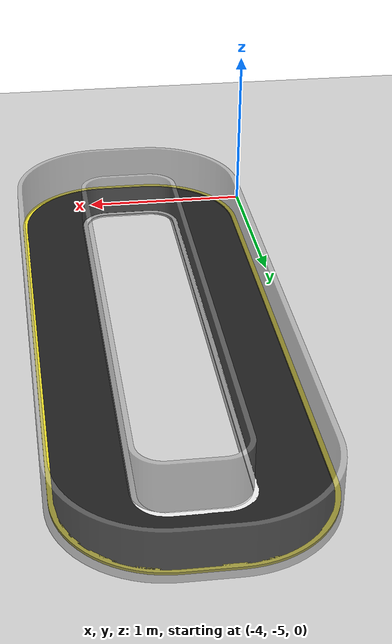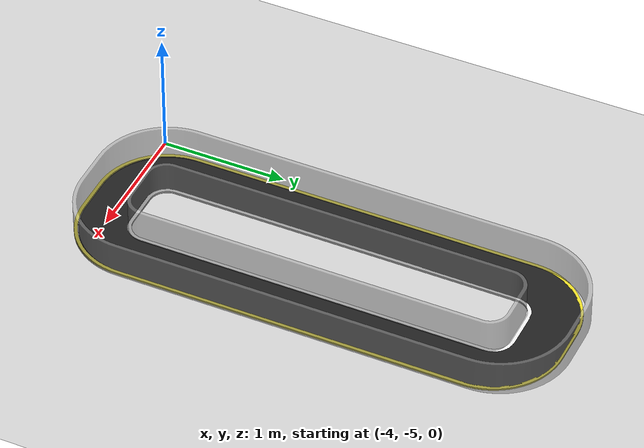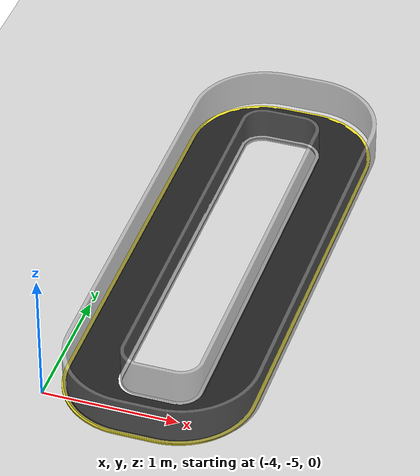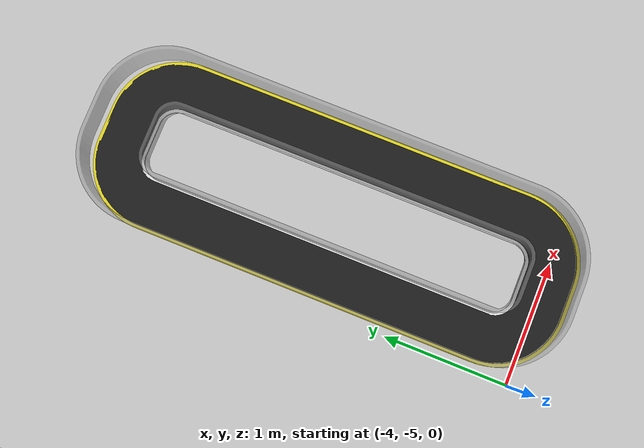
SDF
<sdf version="1.6">
 <world name="default">
  <light name="sun" type="directional">
   <pose>0 0 10 0 -0 0</pose>
   <diffuse>0.8 0.8 0.8 1</diffuse>
   <specular>0.2 0.2 0.2 1</specular>
   <attenuation>
    <range>1000</range>
    <constant>0.9</constant>
    <linear>0.01</linear>
    <quadratic>0.001</quadratic>
   </attenuation>
   <direction>-0.5 0.1 -0.9</direction>
  </light>
  <model name="ground_plane">
   <static>1</static>
   <link name="link">
    <collision name="collision">
     <geometry><plane><normal>0 0 1</normal><size>100 100</size></plane></geometry>
     <surface><friction><ode><mu>100</mu><mu2>50</mu2></ode></friction></surface>
    </collision>
    <visual name="visual">
     <cast_shadows>0</cast_shadows>
     <geometry><plane><normal>0 0 1</normal><size>100 100</size></plane></geometry>
     <material>
      <script><uri>file://media/materials/scripts/gazebo.material</uri><name>Gazebo/Grey</name></script>
     </material>
    </visual>
   </link>
  </model>
  <gravity>0 0 -9.8</gravity>
  <magnetic_field>6e-06 2.3e-05 -4.2e-05</magnetic_field>
  <atmosphere type="adiabatic"/>
  <physics name="default_physics" default="0" type="ode">
   <max_step_size>0.001</max_step_size>
   <real_time_factor>1</real_time_factor>
   <real_time_update_rate>1000</real_time_update_rate>
  </physics>
  <scene><ambient>0.4 0.4 0.4 1</ambient><background>0.7 0.7 0.7 1</background><shadows>1</shadows></scene>
  <audio><device>default</device></audio>
  <spherical_coordinates>
   <surface_model>EARTH_WGS84</surface_model>
   <latitude_deg>0</latitude_deg>
   <longitude_deg>0</longitude_deg>
   <elevation>0</elevation>
   <heading_deg>0</heading_deg>
  </spherical_coordinates>
  <model name="autorace1">
   <link name="link_0">
    <inertial>
     <mass>1</mass>
     <inertia>
      <ixx>0.166667</ixx>
      <ixy>0</ixy>
      <ixz>0</ixz>
      <iyy>0.166667</iyy>
      <iyz>0</iyz>
      <izz>0.166667</izz>
     </inertia>
    </inertial>
    <pose>0.254971 -0.619939 0 0 -0 0</pose>
    <visual name="visual">
     <geometry>
      <mesh><uri>/home/nam/autorace/Track1_main.stl</uri><scale>0.014 0.014 0.014</scale></mesh>
     </geometry>
     <material>
      <lighting>1</lighting>
      <script><uri>file://media/materials/scripts/gazebo.material</uri><name>Gazebo/Black</name></script>
     </material>
    </visual>
    <collision name="collision">
     <geometry>
      <mesh><uri>/home/nam/autorace/Track1_main.stl</uri><scale>0.014 0.014 0.014</scale></mesh>
     </geometry>
     <surface>
      <friction>
       <ode><mu>1</mu><mu2>1</mu2><fdir1>0 0 0</fdir1><slip1>0</slip1><slip2>0</slip2></ode>
       <torsional>
        <coefficient>1</coefficient>
        <patch_radius>0</patch_radius>
        <surface_radius>0</surface_radius>
        <use_patch_radius>1</use_patch_radius>
        <ode><slip>0</slip></ode>
       </torsional>
      </friction>
      <bounce><restitution_coefficient>0</restitution_coefficient><threshold>1e+06</threshold></bounce>
      <contact>
       <collide_without_contact>0</collide_without_contact>
       <collide_without_contact_bitmask>1</collide_without_contact_bitmask>
       <collide_bitmask>1</collide_bitmask>
       <ode>
        <soft_cfm>0</soft_cfm>
        <soft_erp>0.2</soft_erp>
        <kp>1e+13</kp>
        <kd>1</kd>
        <max_vel>0.01</max_vel>
        <min_depth>0</min_depth>
       </ode>
       <bullet>
        <split_impulse>1</split_impulse>
        <split_impulse_penetration_threshold>-0.01</split_impulse_penetration_threshold>
        <soft_cfm>0</soft_cfm>
        <soft_erp>0.2</soft_erp>
        <kp>1e+13</kp>
        <kd>1</kd>
       </bullet>
      </contact>
     </surface>
    </collision>
   </link>
   <link name="link_0_0">
    <inertial>
     <mass>1</mass>
     <inertia>
      <ixx>0.166667</ixx>
      <ixy>0</ixy>
      <ixz>0</ixz>
      <iyy>0.166667</iyy>
      <iyz>0</iyz>
      <izz>0.166667</izz>
     </inertia>
    </inertial>
    <pose>0.268064 -0.609729 -0 0 -0 0</pose>
    <visual name="visual">
     <geometry>
      <mesh><uri>/home/nam/autorace/white_wall.stl</uri><scale>0.0138 0.0138 0.0138</scale></mesh>
     </geometry>
     <material>
      <lighting>1</lighting>
      <script><uri>file://media/materials/scripts/gazebo.material</uri><name>Gazebo/GreyTransparent</name></script>
     </material>
    </visual>
    <collision name="collision">
     <geometry>
      <mesh><uri>/home/nam/autorace/white_wall.stl</uri><scale>0.0138 0.0138 0.0138</scale></mesh>
     </geometry>
     <surface>
      <friction>
       <ode><mu>1</mu><mu2>1</mu2><fdir1>0 0 0</fdir1><slip1>0</slip1><slip2>0</slip2></ode>
       <torsional>
        <coefficient>1</coefficient>
        <patch_radius>0</patch_radius>
        <surface_radius>0</surface_radius>
        <use_patch_radius>1</use_patch_radius>
        <ode><slip>0</slip></ode>
       </torsional>
      </friction>
      <bounce><restitution_coefficient>0</restitution_coefficient><threshold>1e+06</threshold></bounce>
      <contact>
       <collide_without_contact>0</collide_without_contact>
       <collide_without_contact_bitmask>1</collide_without_contact_bitmask>
       <collide_bitmask>1</collide_bitmask>
       <ode>
        <soft_cfm>0</soft_cfm>
        <soft_erp>0.2</soft_erp>
        <kp>1e+13</kp>
        <kd>1</kd>
        <max_vel>0.01</max_vel>
        <min_depth>0</min_depth>
       </ode>
       <bullet>
        <split_impulse>1</split_impulse>
        <split_impulse_penetration_threshold>-0.01</split_impulse_penetration_threshold>
        <soft_cfm>0</soft_cfm>
        <soft_erp>0.2</soft_erp>
        <kp>1e+13</kp>
        <kd>1</kd>
       </bullet>
      </contact>
     </surface>
    </collision>
   </link>
   <link name="link_1">
    <inertial>
     <mass>1</mass>
     <inertia>
      <ixx>0.166667</ixx>
      <ixy>0</ixy>
      <ixz>0</ixz>
      <iyy>0.166667</iyy>
      <iyz>0</iyz>
      <izz>0.166667</izz>
     </inertia>
    </inertial>
    <pose>0.251324 -0.617426 0 0 -0 0</pose>
    <visual name="visual">
     <geometry>
      <mesh><uri>/home/nam/autorace/Track1_white_lane.stl</uri><scale>0.014 0.014 0.014</scale></mesh>
     </geometry>
     <material>
      <lighting>1</lighting>
      <script><uri>file://media/materials/scripts/gazebo.material</uri><name>Gazebo/White</name></script>
     </material>
    </visual>
    <collision name="collision">
     <geometry>
      <mesh><uri>/home/nam/autorace/Track1_white_lane.stl</uri><scale>0.014 0.014 0.014</scale></mesh>
     </geometry>
     <surface>
      <friction>
       <ode><mu>1</mu><mu2>1</mu2><fdir1>0 0 0</fdir1><slip1>0</slip1><slip2>0</slip2></ode>
       <torsional>
        <coefficient>1</coefficient>
        <patch_radius>0</patch_radius>
        <surface_radius>0</surface_radius>
        <use_patch_radius>1</use_patch_radius>
        <ode><slip>0</slip></ode>
       </torsional>
      </friction>
      <bounce><restitution_coefficient>0</restitution_coefficient><threshold>1e+06</threshold></bounce>
      <contact>
       <collide_without_contact>0</collide_without_contact>
       <collide_without_contact_bitmask>1</collide_without_contact_bitmask>
       <collide_bitmask>1</collide_bitmask>
       <ode>
        <soft_cfm>0</soft_cfm>
        <soft_erp>0.2</soft_erp>
        <kp>1e+13</kp>
        <kd>1</kd>
        <max_vel>0.01</max_vel>
        <min_depth>0</min_depth>
       </ode>
       <bullet>
        <split_impulse>1</split_impulse>
        <split_impulse_penetration_threshold>-0.01</split_impulse_penetration_threshold>
        <soft_cfm>0</soft_cfm>
        <soft_erp>0.2</soft_erp>
        <kp>1e+13</kp>
        <kd>1</kd>
       </bullet>
      </contact>
     </surface>
    </collision>
   </link>
   <link name="link_1_0">
    <inertial>
     <mass>1</mass>
     <inertia>
      <ixx>0.166667</ixx>
      <ixy>0</ixy>
      <ixz>0</ixz>
      <iyy>0.166667</iyy>
      <iyz>0</iyz>
      <izz>0.166667</izz>
     </inertia>
    </inertial>
    <pose>0.263265 -0.612072 -0 0 -0 0</pose>
    <visual name="visual">
     <geometry>
      <mesh><uri>/home/nam/autorace/yellow_wall.stl</uri><scale>0.0142 0.0142 0.0142</scale></mesh>
     </geometry>
     <material>
      <lighting>1</lighting>
      <script><uri>file://media/materials/scripts/gazebo.material</uri><name>Gazebo/GreyTransparent</name></script>
     </material>
    </visual>
    <collision name="collision">
     <geometry>
      <mesh><uri>/home/nam/autorace/yellow_wall.stl</uri><scale>0.0142 0.0142 0.0142</scale></mesh>
     </geometry>
     <surface>
      <friction>
       <ode><mu>1</mu><mu2>1</mu2><fdir1>0 0 0</fdir1><slip1>0</slip1><slip2>0</slip2></ode>
       <torsional>
        <coefficient>1</coefficient>
        <patch_radius>0</patch_radius>
        <surface_radius>0</surface_radius>
        <use_patch_radius>1</use_patch_radius>
        <ode><slip>0</slip></ode>
       </torsional>
      </friction>
      <bounce><restitution_coefficient>0</restitution_coefficient><threshold>1e+06</threshold></bounce>
      <contact>
       <collide_without_contact>0</collide_without_contact>
       <collide_without_contact_bitmask>1</collide_without_contact_bitmask>
       <collide_bitmask>1</collide_bitmask>
       <ode>
        <soft_cfm>0</soft_cfm>
        <soft_erp>0.2</soft_erp>
        <kp>1e+13</kp>
        <kd>1</kd>
        <max_vel>0.01</max_vel>
        <min_depth>0</min_depth>
       </ode>
       <bullet>
        <split_impulse>1</split_impulse>
        <split_impulse_penetration_threshold>-0.01</split_impulse_penetration_threshold>
        <soft_cfm>0</soft_cfm>
        <soft_erp>0.2</soft_erp>
        <kp>1e+13</kp>
        <kd>1</kd>
       </bullet>
      </contact>
     </surface>
    </collision>
   </link>
   <link name="link_2">
    <inertial>
     <mass>1</mass>
     <inertia>
      <ixx>0.166667</ixx>
      <ixy>0</ixy>
      <ixz>0</ixz>
      <iyy>0.166667</iyy>
      <iyz>0</iyz>
      <izz>0.166667</izz>
     </inertia>
    </inertial>
    <pose>0.252724 -0.629381 -0 0 -0 0</pose>
    <visual name="visual">
     <geometry>
      <mesh><uri>/home/nam/autorace/Track1_yellow_lane.stl</uri><scale>0.014 0.014 0.014</scale></mesh>
     </geometry>
     <material>
      <lighting>1</lighting>
      <script><uri>file://media/materials/scripts/gazebo.material</uri><name>Gazebo/Yellow</name></script>
     </material>
    </visual>
    <collision name="collision">
     <geometry>
      <mesh><uri>/home/nam/autorace/Track1_yellow_lane.stl</uri><scale>0.014 0.014 0.014</scale></mesh>
     </geometry>
     <surface>
      <friction>
       <ode><mu>1</mu><mu2>1</mu2><fdir1>0 0 0</fdir1><slip1>0</slip1><slip2>0</slip2></ode>
       <torsional>
        <coefficient>1</coefficient>
        <patch_radius>0</patch_radius>
        <surface_radius>0</surface_radius>
        <use_patch_radius>1</use_patch_radius>
        <ode><slip>0</slip></ode>
       </torsional>
      </friction>
      <bounce><restitution_coefficient>0</restitution_coefficient><threshold>1e+06</threshold></bounce>
      <contact>
       <collide_without_contact>0</collide_without_contact>
       <collide_without_contact_bitmask>1</collide_without_contact_bitmask>
       <collide_bitmask>1</collide_bitmask>
       <ode>
        <soft_cfm>0</soft_cfm>
        <soft_erp>0.2</soft_erp>
        <kp>1e+13</kp>
        <kd>1</kd>
        <max_vel>0.01</max_vel>
        <min_depth>0</min_depth>
       </ode>
       <bullet>
        <split_impulse>1</split_impulse>
        <split_impulse_penetration_threshold>-0.01</split_impulse_penetration_threshold>
        <soft_cfm>0</soft_cfm>
        <soft_erp>0.2</soft_erp>
        <kp>1e+13</kp>
        <kd>1</kd>
       </bullet>
      </contact>
     </surface>
    </collision>
   </link>
   <static>1</static>
   <pose>-3.76451 -4.05607 -0 -0 -0 -0</pose>
  </model>
 </world>
</sdf>
